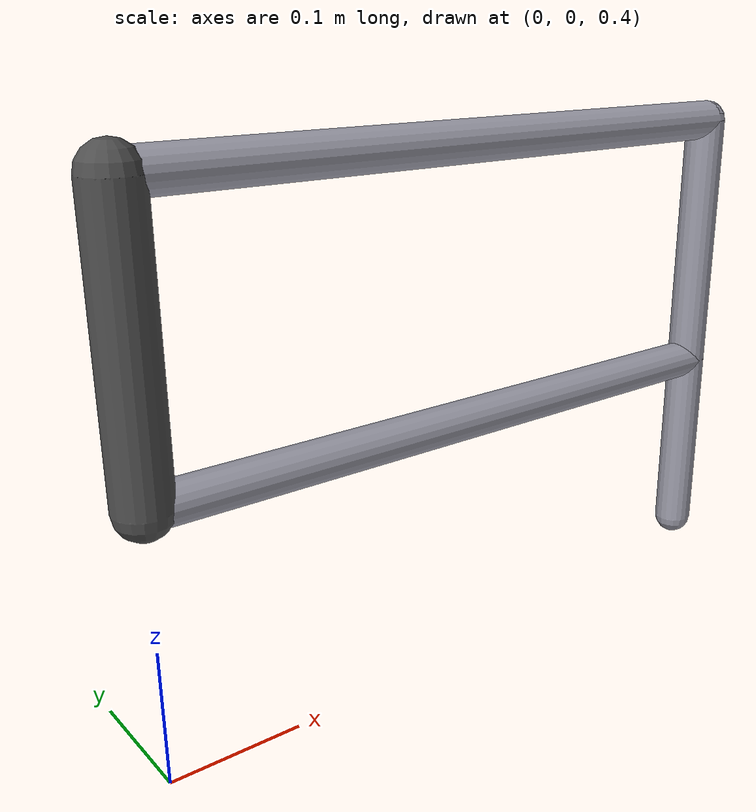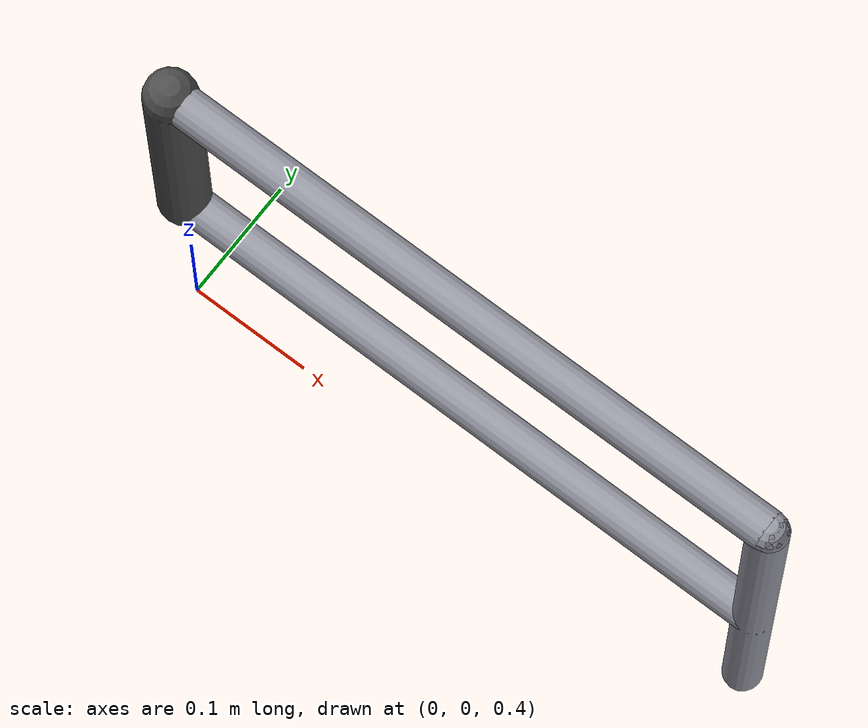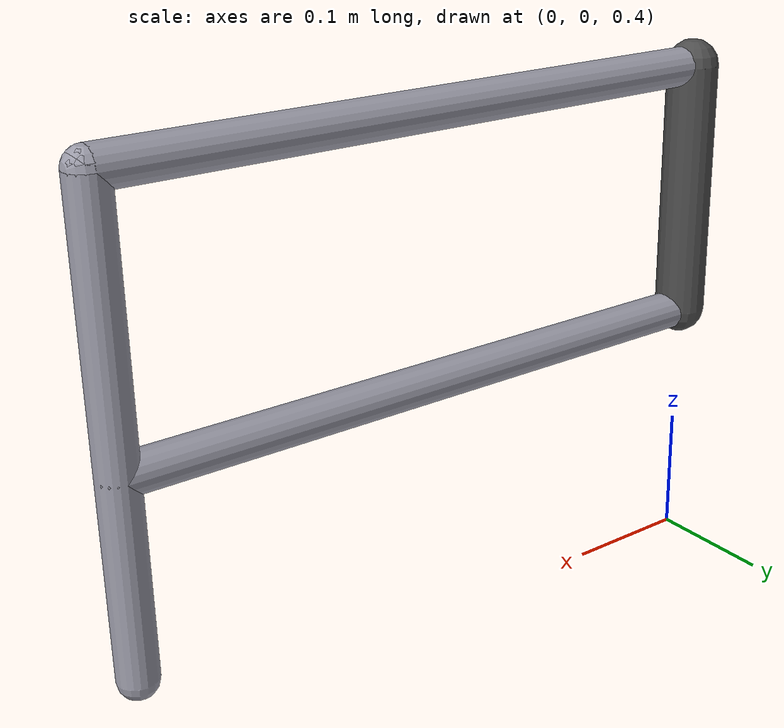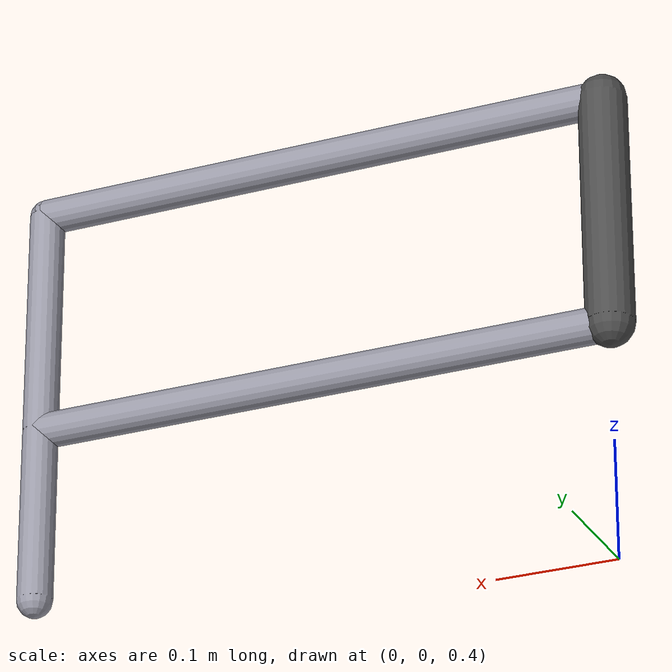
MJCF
<mujoco model="parallelogram_jointeq">
  <option timestep="0.001" gravity="0 0 -9.81" integrator="implicitfast" solver="Newton"
          iterations="100" tolerance="1e-12"/>

  <default>
    <!-- see parallelogram_connect.xml for why collision is off here -->
    <geom type="capsule" size="0.015" density="800" rgba="0.6 0.6 0.65 1"
          contype="0" conaffinity="0"/>
    <joint type="hinge" axis="0 1 0" damping="0.05"/>
    <site type="sphere" size="0.012" rgba="1 0.3 0.1 1"/>
  </default>

  <worldbody>
    <geom type="capsule" fromto="0 0 0.60  0 0 0.80" size="0.02" rgba="0.3 0.3 0.3 1"
          contype="0" conaffinity="0"/>

    <body name="crank" pos="0 0 0.60">
      <joint name="j_crank"/>
      <geom fromto="0 0 0  0.50 0 0"/>
      <site name="cut_a" pos="0.50 0 0"/>
    </body>

    <body name="rocker" pos="0 0 0.80">
      <joint name="j_rocker"/>
      <geom fromto="0 0 0  0.50 0 0"/>

      <body name="coupler" pos="0.50 0 0">
        <joint name="j_coupler"/>
        <geom fromto="0 0 0  0 0 -0.35"/>
        <site name="cut_b" pos="0 0 -0.20"/>
        <site name="tool"  pos="0 0 -0.35" rgba="0.1 0.8 0.3 1"/>
      </body>
    </body>
  </worldbody>

  <equality>
    <!-- polycoef = a0 a1 a2 a3 a4  ->  joint1 = a0 + a1*joint2 + a2*joint2^2 + ... -->
    <joint joint1="j_rocker"  joint2="j_crank" polycoef="0  1 0 0 0" solref="0.002 1" solimp="0.999 0.9999 0.0001 0.5 2"/>
    <joint joint1="j_coupler" joint2="j_crank" polycoef="0 -1 0 0 0" solref="0.002 1" solimp="0.999 0.9999 0.0001 0.5 2"/>
  </equality>

  <actuator>
    <position name="a_crank" joint="j_crank" kp="800" kv="40" ctrlrange="-1.4 1.4"/>
  </actuator>
</mujoco>
